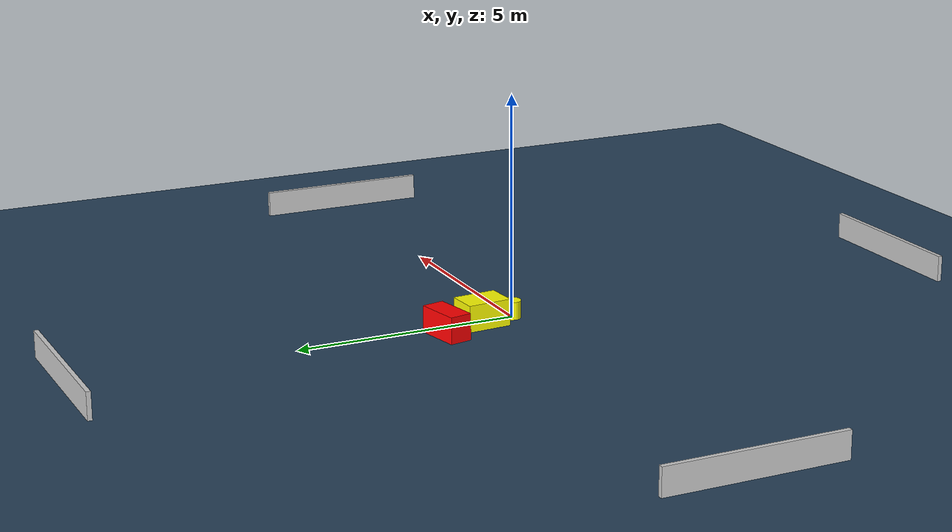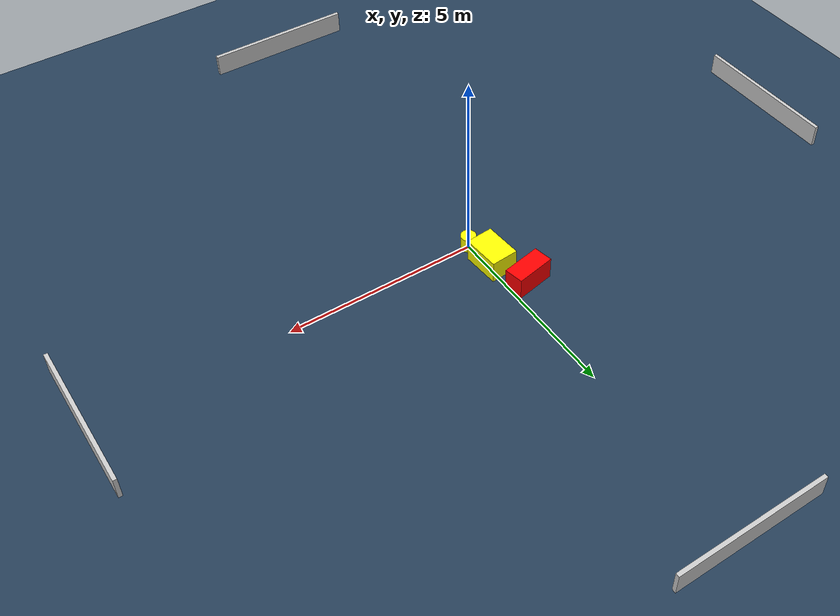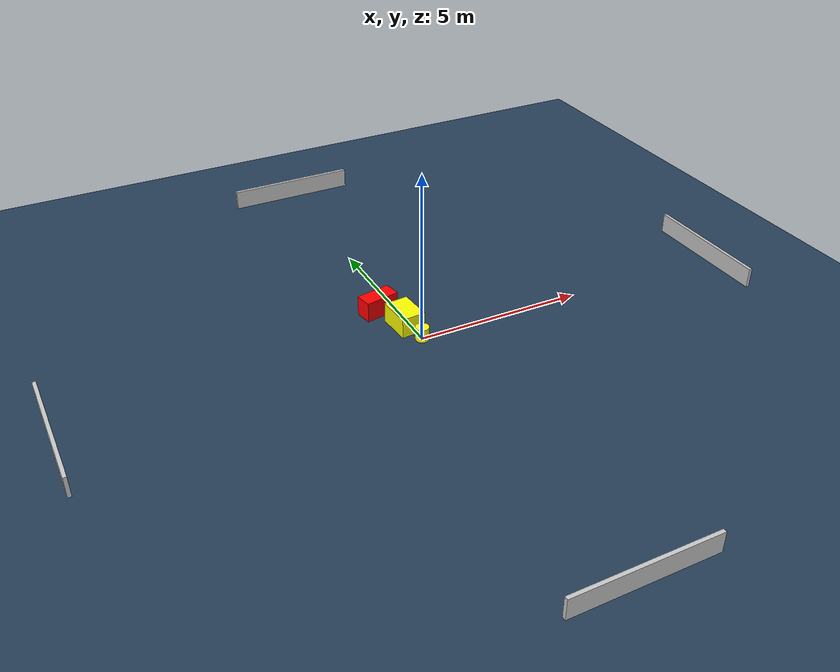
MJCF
<?xml version="1.0" ?>
<mujoco model="generated_environment">
  <option timestep="0.01" integrator="RK4" cone="elliptic"/>
  <default>
    <geom density="1"/>
  </default>
  <asset>
    <texture builtin="gradient" height="3072" name="skybox" rgb1="0.3 0.5 0.7" rgb2="0 0 0" type="skybox" width="512"/>
    <texture builtin="checker" height="300" name="groundplane" rgb1="0.2 0.3 0.4" rgb2="0.1 0.2 0.3" type="2d" width="300"/>
    <material name="groundplane" reflectance="0.2" texrepeat="5 5" texture="groundplane"/>
  </asset>
  <worldbody>
    <light dir="0 0 -1" directional="true" pos="0 0 1.5"/>
    <geom condim="3" friction="0.5 0.005 0.001" material="groundplane" name="floor" pos="0 0 0" size="0 0 0.05" type="plane"/>
    <body name="walls">
      <geom name="wall_1" condim="4" pos="-10.0 0.0 0.3" rgba="0.800000011920929 0.800000011920929 0.800000011920929 1.0" size="0.05 2.0 0.3" type="box"/>
      <geom name="wall_2" condim="4" pos="10.0 0.0 0.3" rgba="0.800000011920929 0.800000011920929 0.800000011920929 1.0" size="0.05 2.0 0.3" type="box"/>
      <geom name="wall_3" condim="4" pos="0.0 -10.0 0.3" rgba="0.800000011920929 0.800000011920929 0.800000011920929 1.0" size="2.0 0.05 0.3" type="box"/>
      <geom name="wall_4" condim="4" pos="0.0 10.0 0.3" rgba="0.800000011920929 0.800000011920929 0.800000011920929 1.0" size="2.0 0.05 0.3" type="box"/>
    </body>
    <body name="robot">
      <joint name="joint_x" type="slide" pos="0 0 0" axis="1 0 0"/>
      <joint name="joint_y" type="slide" pos="0 0 0" axis="0 1 0"/>
      <geom name="robot" type="cylinder" pos="0.0 0.0 0.2" size="0.2 0.2 0.0" mass="5.0" friction="1.0 0.005 0.0001" condim="4" rgba="1.0 1.0 0.0 1.0"/>
    </body>
    <body name="obstacle_1_movable">
      <geom name="obstacle_1_movable" condim="4" pos="-0.14745336477371002 0.7981556861395548 0.3" euler="0 0 274.11160872915593" friction="0.0 0.005 0.001" rgba="1.0 1.0 0.0 1.0" size="0.5006472192211652 0.3594683871032941 0.3" type="box" mass="0.1"/>
      <joint type="free"/>
    </body>
    <body name="obstacle_2_static">
      <geom name="obstacle_2_static" condim="4" pos="-0.5118194158633792 1.798993798442714 0.3" euler="0 0 10.983585577323002" friction="0.0 0.005 0.001" rgba="1.0 0.0 0.0 1.0" size="0.5204718542916995 0.2534660339925335 0.3" type="box"/>
    </body>
  </worldbody>
  <actuator>
    <motor name="actuator_x" joint="joint_x" gear="1" ctrlrange="-1 1"/>
    <motor name="actuator_y" joint="joint_y" gear="1" ctrlrange="-1 1"/>
  </actuator>
</mujoco>
